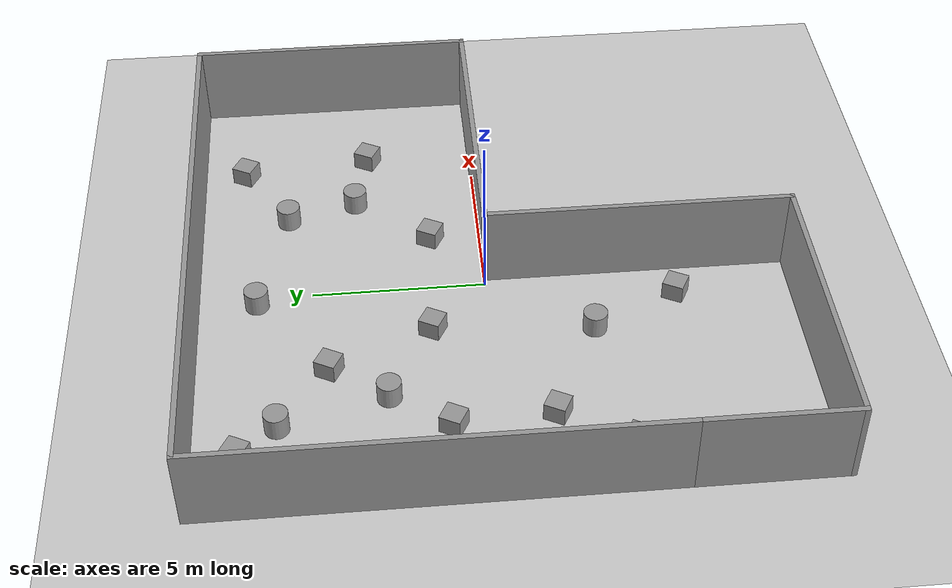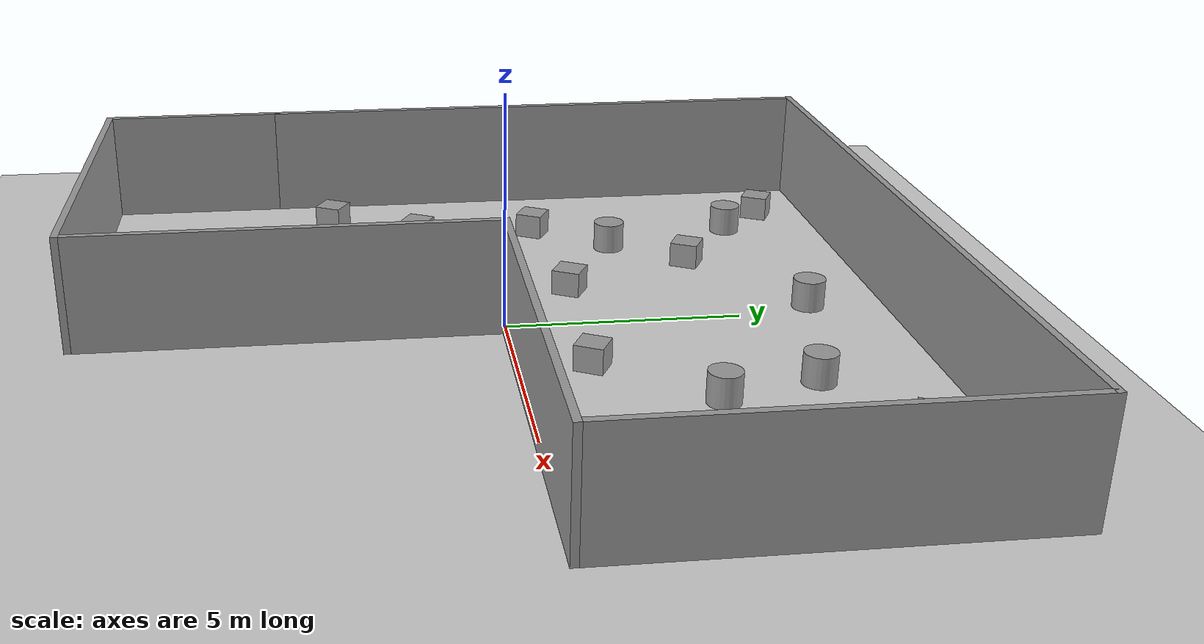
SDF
<sdf version="1.7">
 <world name="default">
  <light name="sun" type="directional">
   <pose>0 0 10 0 -0 0</pose>
   <diffuse>0.8 0.8 0.8 1</diffuse>
   <specular>0.2 0.2 0.2 1</specular>
   <attenuation>
    <range>1000</range>
    <constant>0.9</constant>
    <linear>0.01</linear>
    <quadratic>0.001</quadratic>
   </attenuation>
   <direction>-0.5 0.1 -0.9</direction>
   <spot><inner_angle>0</inner_angle><outer_angle>0</outer_angle><falloff>0</falloff></spot>
  </light>
  <model name="ground_plane">
   <static>1</static>
   <link name="link">
    <collision name="collision">
     <geometry><plane><normal>0 0 1</normal><size>100 100</size></plane></geometry>
     <surface>
      <contact><collide_bitmask>65535</collide_bitmask></contact>
      <friction><ode><mu>100</mu><mu2>50</mu2></ode></friction>
     </surface>
    </collision>
    <visual name="visual">
     <cast_shadows>0</cast_shadows>
     <geometry><plane><normal>0 0 1</normal><size>100 100</size></plane></geometry>
     <material>
      <script><uri>file://media/materials/scripts/gazebo.material</uri><name>Gazebo/Grey</name></script>
     </material>
    </visual>
   </link>
  </model>
  <gravity>0 0 -9.8</gravity>
  <magnetic_field>6e-06 2.3e-05 -4.2e-05</magnetic_field>
  <atmosphere type="adiabatic"/>
  <physics type="ode">
   <max_step_size>0.001</max_step_size>
   <real_time_factor>1</real_time_factor>
   <real_time_update_rate>1000</real_time_update_rate>
  </physics>
  <scene><ambient>0.4 0.4 0.4 1</ambient><background>0.7 0.7 0.7 1</background><shadows>1</shadows></scene>
  <spherical_coordinates>
   <surface_model>EARTH_WGS84</surface_model>
   <latitude_deg>0</latitude_deg>
   <longitude_deg>0</longitude_deg>
   <elevation>0</elevation>
   <heading_deg>0</heading_deg>
  </spherical_coordinates>
  <model name="corner">
   <pose>0.455 -0.26 0 0 -0 0</pose>
   <link name="Wall_10">
    <collision name="Wall_10_Collision">
     <geometry><box><size>9 0.15 2.5</size></box></geometry>
     <pose>0 0 1.25 0 -0 0</pose>
    </collision>
    <visual name="Wall_10_Visual">
     <pose>0 0 1.25 0 -0 0</pose>
     <geometry><box><size>9 0.15 2.5</size></box></geometry>
     <material>
      <script><uri>file://media/materials/scripts/gazebo.material</uri><name>Gazebo/Grey</name></script>
      <ambient>1 1 1 1</ambient>
     </material>
     <meta><layer>0</layer></meta>
    </visual>
    <pose>-0.175 -4.175 0 0 -0 -1.5708</pose>
   </link>
   <link name="Wall_11">
    <collision name="Wall_11_Collision">
     <geometry><box><size>8.4 0.15 2.5</size></box></geometry>
     <pose>0 0 1.25 0 -0 0</pose>
    </collision>
    <visual name="Wall_11_Visual">
     <pose>0 0 1.25 0 -0 0</pose>
     <geometry><box><size>8.4 0.15 2.5</size></box></geometry>
     <material>
      <script><uri>file://media/materials/scripts/gazebo.material</uri><name>Gazebo/Grey</name></script>
      <ambient>1 1 1 1</ambient>
     </material>
     <meta><layer>0</layer></meta>
    </visual>
    <pose>-4.3 -8.6 0 0 -0 3.14159</pose>
   </link>
   <link name="Wall_5">
    <collision name="Wall_5_Collision">
     <geometry><box><size>4.25 0.15 2.5</size></box></geometry>
     <pose>0 0 1.25 0 -0 0</pose>
    </collision>
    <visual name="Wall_5_Visual">
     <pose>0 0 1.25 0 -0 0</pose>
     <geometry><box><size>4.25 0.15 2.5</size></box></geometry>
     <material>
      <script><uri>file://media/materials/scripts/gazebo.material</uri><name>Gazebo/Grey</name></script>
      <ambient>1 1 1 1</ambient>
     </material>
     <meta><layer>0</layer></meta>
    </visual>
    <pose>-8.425 -6.55 0 0 -0 1.5708</pose>
   </link>
   <link name="Wall_6">
    <collision name="Wall_6_Collision">
     <geometry><box><size>13.25 0.15 2.5</size></box></geometry>
     <pose>0 0 1.25 0 -0 0</pose>
    </collision>
    <visual name="Wall_6_Visual">
     <pose>0 0 1.25 0 -0 0</pose>
     <geometry><box><size>13.25 0.15 2.5</size></box></geometry>
     <material>
      <script><uri>file://media/materials/scripts/gazebo.material</uri><name>Gazebo/Grey</name></script>
      <ambient>1 1 1 1</ambient>
     </material>
     <meta><layer>0</layer></meta>
    </visual>
    <pose>-8.425 2.05 0 0 -0 1.5708</pose>
   </link>
   <link name="Wall_7">
    <collision name="Wall_7_Collision">
     <geometry><box><size>17 0.15 2.5</size></box></geometry>
     <pose>0 0 1.25 0 -0 0</pose>
    </collision>
    <visual name="Wall_7_Visual">
     <pose>0 0 1.25 0 -0 0</pose>
     <geometry><box><size>17 0.15 2.5</size></box></geometry>
     <material>
      <script><uri>file://media/materials/scripts/gazebo.material</uri><name>Gazebo/Grey</name></script>
      <ambient>1 1 1 1</ambient>
     </material>
     <meta><layer>0</layer></meta>
    </visual>
    <pose>0 8.6 0 0 -0 0</pose>
   </link>
   <link name="Wall_8">
    <collision name="Wall_8_Collision">
     <geometry><box><size>8.5 0.15 2.5</size></box></geometry>
     <pose>0 0 1.25 0 -0 0</pose>
    </collision>
    <visual name="Wall_8_Visual">
     <pose>0 0 1.25 0 -0 0</pose>
     <geometry><box><size>8.5 0.15 2.5</size></box></geometry>
     <material>
      <script><uri>file://media/materials/scripts/gazebo.material</uri><name>Gazebo/Grey</name></script>
      <ambient>1 1 1 1</ambient>
     </material>
     <meta><layer>0</layer></meta>
    </visual>
    <pose>8.425 4.425 0 0 -0 -1.5708</pose>
   </link>
   <link name="Wall_9">
    <collision name="Wall_9_Collision">
     <geometry><box><size>8.75 0.15 2.5</size></box></geometry>
     <pose>0 0 1.25 0 -0 0</pose>
    </collision>
    <visual name="Wall_9_Visual">
     <pose>0 0 1.25 0 -0 0</pose>
     <geometry><box><size>8.75 0.15 2.5</size></box></geometry>
     <material>
      <script><uri>file://media/materials/scripts/gazebo.material</uri><name>Gazebo/Grey</name></script>
      <ambient>1 1 1 1</ambient>
     </material>
     <meta><layer>0</layer></meta>
    </visual>
    <pose>4.125 0.25 0 0 -0 3.14159</pose>
   </link>
   <static>1</static>
  </model>
  <model name="unit_box">
   <pose>-6.48837 -3.49388 0.2767 0 0 -0.487507</pose>
   <link name="link">
    <inertial>
     <mass>1</mass>
     <inertia>
      <ixx>0.166667</ixx>
      <ixy>0</ixy>
      <ixz>0</ixz>
      <iyy>0.166667</iyy>
      <iyz>0</iyz>
      <izz>0.166667</izz>
     </inertia>
    </inertial>
    <collision name="collision"><geometry><box><size>0.604912 0.615724 0.5534</size></box></geometry></collision>
    <visual name="visual">
     <geometry><box><size>0.604912 0.615724 0.5534</size></box></geometry>
     <material>
      <script><name>Gazebo/Grey</name><uri>file://media/materials/scripts/gazebo.material</uri></script>
     </material>
    </visual>
   </link>
  </model>
  <model name="unit_box_clone">
   <pose>-5.22458 -1.49355 0.2767 0 -0 -0.487507</pose>
   <link name="link">
    <inertial>
     <mass>1</mass>
     <inertia>
      <ixx>0.166667</ixx>
      <ixy>0</ixy>
      <ixz>0</ixz>
      <iyy>0.166667</iyy>
      <iyz>0</iyz>
      <izz>0.166667</izz>
     </inertia>
    </inertial>
    <collision name="collision"><geometry><box><size>0.604912 0.615724 0.5534</size></box></geometry></collision>
    <visual name="visual">
     <geometry><box><size>0.604912 0.615724 0.5534</size></box></geometry>
     <material>
      <script><name>Gazebo/Grey</name><uri>file://media/materials/scripts/gazebo.material</uri></script>
     </material>
    </visual>
   </link>
  </model>
  <model name="unit_box_clone_0">
   <pose>-0.853916 -5.43273 0.2767 0 0 -0.487507</pose>
   <link name="link">
    <inertial>
     <mass>1</mass>
     <inertia>
      <ixx>0.166667</ixx>
      <ixy>0</ixy>
      <ixz>0</ixz>
      <iyy>0.166667</iyy>
      <iyz>0</iyz>
      <izz>0.166667</izz>
     </inertia>
    </inertial>
    <collision name="collision"><geometry><box><size>0.604912 0.615724 0.5534</size></box></geometry></collision>
    <visual name="visual">
     <geometry><box><size>0.604912 0.615724 0.5534</size></box></geometry>
     <material>
      <script><name>Gazebo/Grey</name><uri>file://media/materials/scripts/gazebo.material</uri></script>
     </material>
    </visual>
   </link>
  </model>
  <model name="unit_box_clone_1">
   <pose>-5.41766 1.31322 0.2767 0 -0 -0.487507</pose>
   <link name="link">
    <inertial>
     <mass>1</mass>
     <inertia>
      <ixx>0.166667</ixx>
      <ixy>0</ixy>
      <ixz>0</ixz>
      <iyy>0.166667</iyy>
      <iyz>0</iyz>
      <izz>0.166667</izz>
     </inertia>
    </inertial>
    <collision name="collision"><geometry><box><size>0.604912 0.615724 0.5534</size></box></geometry></collision>
    <visual name="visual">
     <geometry><box><size>0.604912 0.615724 0.5534</size></box></geometry>
     <material>
      <script><name>Gazebo/Grey</name><uri>file://media/materials/scripts/gazebo.material</uri></script>
     </material>
    </visual>
   </link>
  </model>
  <model name="unit_box_clone_2">
   <pose>-1.74627 1.6388 0.2767 0 0 -0.487507</pose>
   <link name="link">
    <inertial>
     <mass>1</mass>
     <inertia>
      <ixx>0.166667</ixx>
      <ixy>0</ixy>
      <ixz>0</ixz>
      <iyy>0.166667</iyy>
      <iyz>0</iyz>
      <izz>0.166667</izz>
     </inertia>
    </inertial>
    <collision name="collision"><geometry><box><size>0.604912 0.615724 0.5534</size></box></geometry></collision>
    <visual name="visual">
     <geometry><box><size>0.604912 0.615724 0.5534</size></box></geometry>
     <material>
      <script><name>Gazebo/Grey</name><uri>file://media/materials/scripts/gazebo.material</uri></script>
     </material>
    </visual>
   </link>
  </model>
  <model name="unit_box_clone_3">
   <pose>-3.089 4.5819 0.2767 0 -0 -0.487507</pose>
   <link name="link">
    <inertial>
     <mass>1</mass>
     <inertia>
      <ixx>0.166667</ixx>
      <ixy>0</ixy>
      <ixz>0</ixz>
      <iyy>0.166667</iyy>
      <iyz>0</iyz>
      <izz>0.166667</izz>
     </inertia>
    </inertial>
    <collision name="collision"><geometry><box><size>0.604912 0.615724 0.5534</size></box></geometry></collision>
    <visual name="visual">
     <geometry><box><size>0.604912 0.615724 0.5534</size></box></geometry>
     <material>
      <script><name>Gazebo/Grey</name><uri>file://media/materials/scripts/gazebo.material</uri></script>
     </material>
    </visual>
   </link>
  </model>
  <model name="unit_box_clone_4">
   <pose>2.10282 1.47754 0.2767 0 0 -0.487507</pose>
   <link name="link">
    <inertial>
     <mass>1</mass>
     <inertia>
      <ixx>0.166667</ixx>
      <ixy>0</ixy>
      <ixz>0</ixz>
      <iyy>0.166667</iyy>
      <iyz>0</iyz>
      <izz>0.166667</izz>
     </inertia>
    </inertial>
    <collision name="collision"><geometry><box><size>0.604912 0.615724 0.5534</size></box></geometry></collision>
    <visual name="visual">
     <geometry><box><size>0.604912 0.615724 0.5534</size></box></geometry>
     <material>
      <script><name>Gazebo/Grey</name><uri>file://media/materials/scripts/gazebo.material</uri></script>
     </material>
    </visual>
   </link>
  </model>
  <model name="unit_box_clone_5">
   <pose>5.94158 3.21601 0.2767 0 -0 -0.487507</pose>
   <link name="link">
    <inertial>
     <mass>1</mass>
     <inertia>
      <ixx>0.166667</ixx>
      <ixy>0</ixy>
      <ixz>0</ixz>
      <iyy>0.166667</iyy>
      <iyz>0</iyz>
      <izz>0.166667</izz>
     </inertia>
    </inertial>
    <collision name="collision"><geometry><box><size>0.604912 0.615724 0.5534</size></box></geometry></collision>
    <visual name="visual">
     <geometry><box><size>0.604912 0.615724 0.5534</size></box></geometry>
     <material>
      <script><name>Gazebo/Grey</name><uri>file://media/materials/scripts/gazebo.material</uri></script>
     </material>
    </visual>
   </link>
  </model>
  <model name="unit_box_clone_6">
   <pose>5.51415 7 0.2767 0 0 -0.487507</pose>
   <link name="link">
    <inertial>
     <mass>1</mass>
     <inertia>
      <ixx>0.166667</ixx>
      <ixy>0</ixy>
      <ixz>0</ixz>
      <iyy>0.166667</iyy>
      <iyz>0</iyz>
      <izz>0.166667</izz>
     </inertia>
    </inertial>
    <collision name="collision"><geometry><box><size>0.604912 0.615724 0.5534</size></box></geometry></collision>
    <visual name="visual">
     <geometry><box><size>0.604912 0.615724 0.5534</size></box></geometry>
     <material>
      <script><name>Gazebo/Grey</name><uri>file://media/materials/scripts/gazebo.material</uri></script>
     </material>
    </visual>
   </link>
  </model>
  <model name="unit_box_clone_7">
   <pose>-6.07609 7.06675 0.2767 0 -0 -0.487507</pose>
   <link name="link">
    <inertial>
     <mass>1</mass>
     <inertia>
      <ixx>0.166667</ixx>
      <ixy>0</ixy>
      <ixz>0</ixz>
      <iyy>0.166667</iyy>
      <iyz>0</iyz>
      <izz>0.166667</izz>
     </inertia>
    </inertial>
    <collision name="collision"><geometry><box><size>0.604912 0.615724 0.5534</size></box></geometry></collision>
    <visual name="visual">
     <geometry><box><size>0.604912 0.615724 0.5534</size></box></geometry>
     <material>
      <script><name>Gazebo/Grey</name><uri>file://media/materials/scripts/gazebo.material</uri></script>
     </material>
    </visual>
   </link>
  </model>
  <model name="unit_cylinder">
   <pose>-0.32134 6.59824 0.329836 0 -0 0</pose>
   <link name="link">
    <inertial>
     <mass>1</mass>
     <inertia><ixx>0.145833</ixx><ixy>0</ixy><ixz>0</ixz><iyy>0.145833</iyy><iyz>0</iyz><izz>0.125</izz></inertia>
    </inertial>
    <collision name="collision">
     <geometry><cylinder><radius>0.342765</radius><length>0.65969</length></cylinder></geometry>
    </collision>
    <visual name="visual">
     <geometry><cylinder><radius>0.342765</radius><length>0.65969</length></cylinder></geometry>
     <material>
      <script><name>Gazebo/Grey</name><uri>file://media/materials/scripts/gazebo.material</uri></script>
     </material>
    </visual>
   </link>
  </model>
  <model name="unit_cylinder_clone">
   <pose>-2.08171 -2.93142 0.329844 0 -0 0</pose>
   <link name="link">
    <inertial>
     <mass>1</mass>
     <inertia><ixx>0.145833</ixx><ixy>0</ixy><ixz>0</ixz><iyy>0.145833</iyy><iyz>0</iyz><izz>0.125</izz></inertia>
    </inertial>
    <collision name="collision">
     <geometry><cylinder><radius>0.342765</radius><length>0.65969</length></cylinder></geometry>
    </collision>
    <visual name="visual">
     <geometry><cylinder><radius>0.342765</radius><length>0.65969</length></cylinder></geometry>
     <material>
      <script><name>Gazebo/Grey</name><uri>file://media/materials/scripts/gazebo.material</uri></script>
     </material>
    </visual>
   </link>
  </model>
  <model name="unit_cylinder_clone_0">
   <pose>-4.2391 2.9733 0.329836 0 -0 0</pose>
   <link name="link">
    <inertial>
     <mass>1</mass>
     <inertia><ixx>0.145833</ixx><ixy>0</ixy><ixz>0</ixz><iyy>0.145833</iyy><iyz>0</iyz><izz>0.125</izz></inertia>
    </inertial>
    <collision name="collision">
     <geometry><cylinder><radius>0.342765</radius><length>0.65969</length></cylinder></geometry>
    </collision>
    <visual name="visual">
     <geometry><cylinder><radius>0.342765</radius><length>0.65969</length></cylinder></geometry>
     <material>
      <script><name>Gazebo/Grey</name><uri>file://media/materials/scripts/gazebo.material</uri></script>
     </material>
    </visual>
   </link>
  </model>
  <model name="unit_cylinder_clone_1">
   <pose>3.2672 5.67938 0.329844 0 -0 0</pose>
   <link name="link">
    <inertial>
     <mass>1</mass>
     <inertia><ixx>0.145833</ixx><ixy>0</ixy><ixz>0</ixz><iyy>0.145833</iyy><iyz>0</iyz><izz>0.125</izz></inertia>
    </inertial>
    <collision name="collision">
     <geometry><cylinder><radius>0.342765</radius><length>0.65969</length></cylinder></geometry>
    </collision>
    <visual name="visual">
     <geometry><cylinder><radius>0.342765</radius><length>0.65969</length></cylinder></geometry>
     <material>
      <script><name>Gazebo/Grey</name><uri>file://media/materials/scripts/gazebo.material</uri></script>
     </material>
    </visual>
   </link>
  </model>
  <model name="unit_cylinder_clone_2">
   <pose>-5.0931 6.00243 0.329836 0 -0 0</pose>
   <link name="link">
    <inertial>
     <mass>1</mass>
     <inertia><ixx>0.145833</ixx><ixy>0</ixy><ixz>0</ixz><iyy>0.145833</iyy><iyz>0</iyz><izz>0.125</izz></inertia>
    </inertial>
    <collision name="collision">
     <geometry><cylinder><radius>0.342765</radius><length>0.65969</length></cylinder></geometry>
    </collision>
    <visual name="visual">
     <geometry><cylinder><radius>0.342765</radius><length>0.65969</length></cylinder></geometry>
     <material>
      <script><name>Gazebo/Grey</name><uri>file://media/materials/scripts/gazebo.material</uri></script>
     </material>
    </visual>
   </link>
  </model>
  <model name="unit_cylinder_clone_3">
   <pose>3.86339 3.6567 0.329844 0 -0 0</pose>
   <link name="link">
    <inertial>
     <mass>1</mass>
     <inertia><ixx>0.145833</ixx><ixy>0</ixy><ixz>0</ixz><iyy>0.145833</iyy><iyz>0</iyz><izz>0.125</izz></inertia>
    </inertial>
    <collision name="collision">
     <geometry><cylinder><radius>0.342765</radius><length>0.65969</length></cylinder></geometry>
    </collision>
    <visual name="visual">
     <geometry><cylinder><radius>0.342765</radius><length>0.65969</length></cylinder></geometry>
     <material>
      <script><name>Gazebo/Grey</name><uri>file://media/materials/scripts/gazebo.material</uri></script>
     </material>
    </visual>
   </link>
  </model>
 </world>
</sdf>
